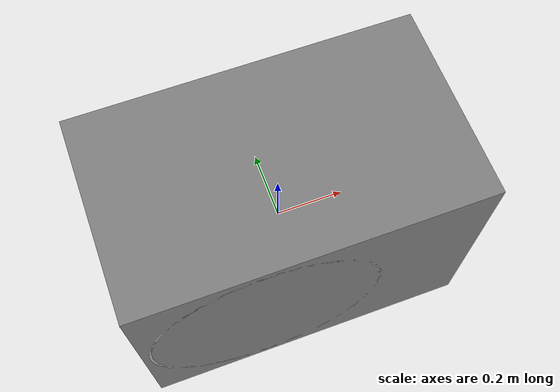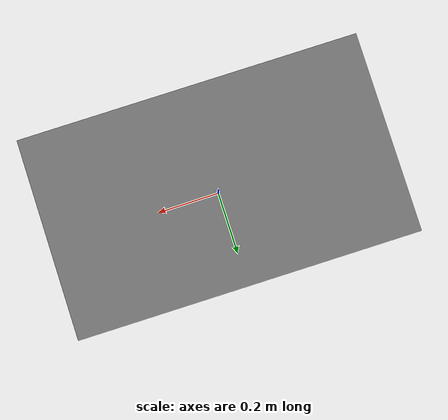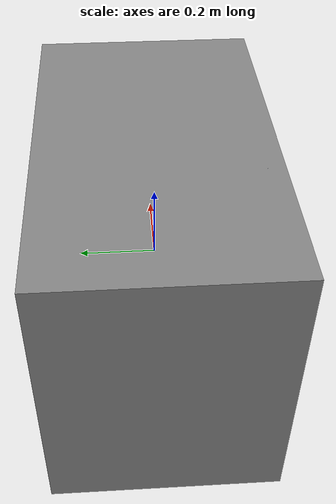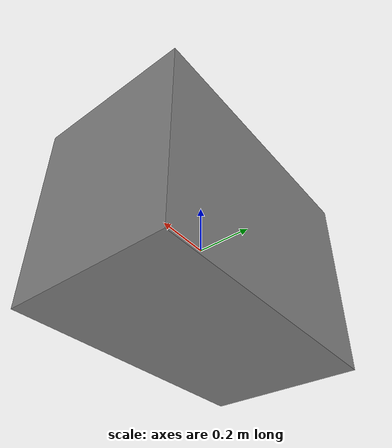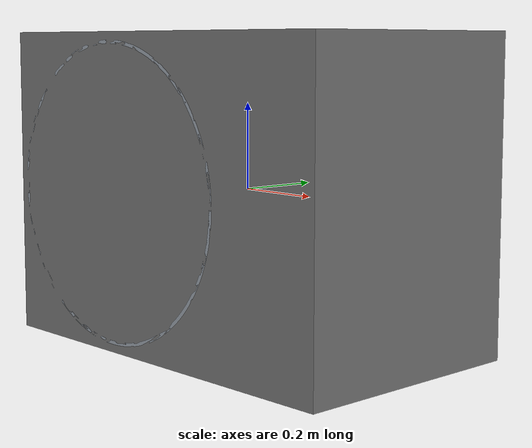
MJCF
<mujoco model="asset">
  <asset>
    <mesh name="mujoco_mug_visual" file="mujoco_mug.normalized.obj"/>
    <mesh name="mujoco_mug_collision" file="mujoco_mug.collision_box.obj"/>
  </asset>
  <worldbody><body name="mujoco_mug">
    <geom type="mesh" mesh="mujoco_mug_visual" contype="0" conaffinity="0" rgba="0.65 0.68 0.72 1"/>
    <geom type="mesh" mesh="mujoco_mug_collision" density="1000"/>
  </body></worldbody>
</mujoco>
